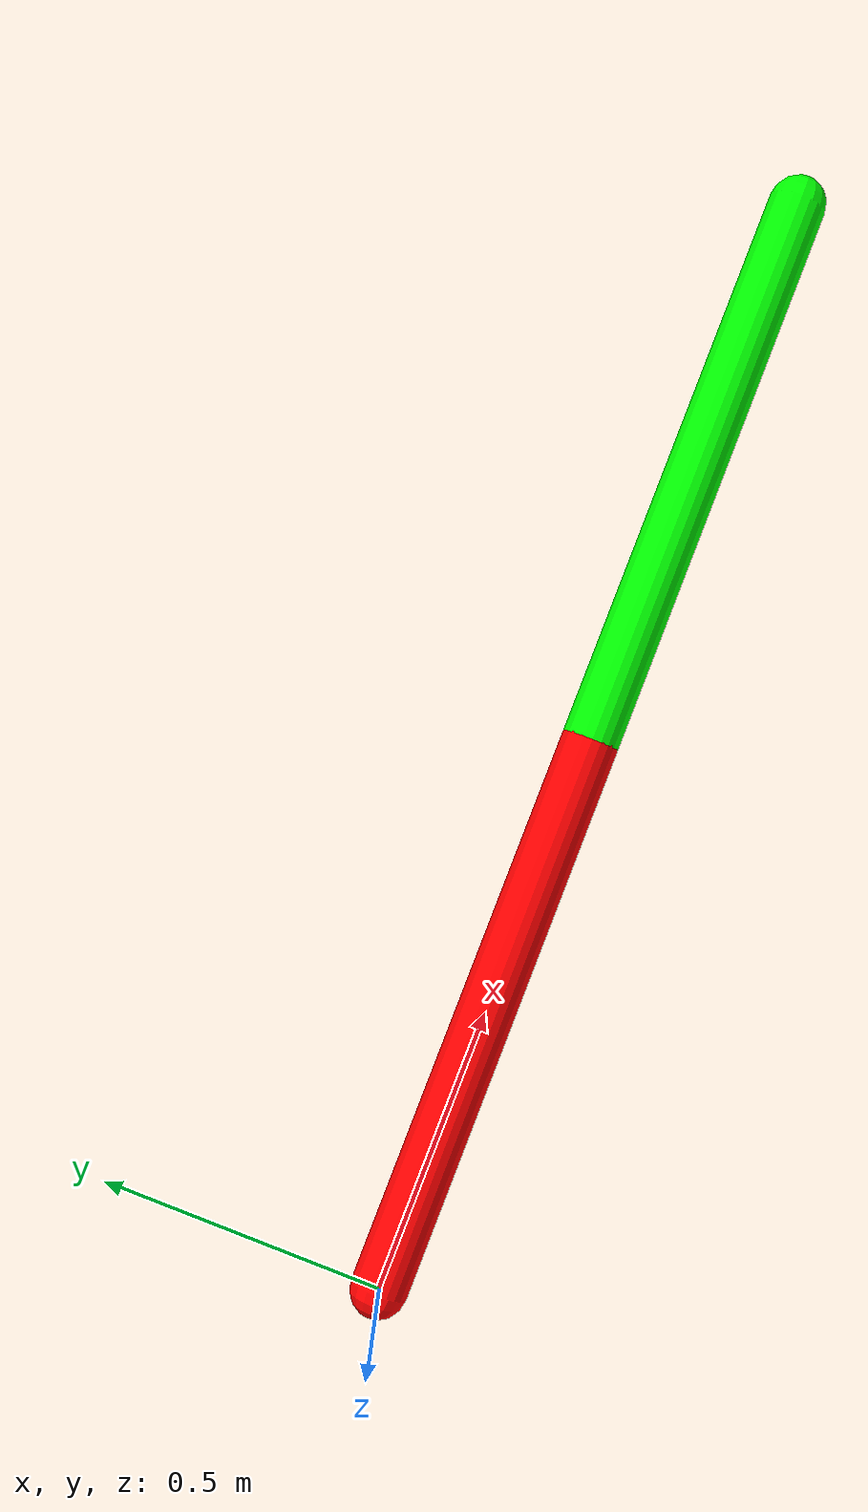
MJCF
<mujoco>
    <option gravity="0 0 -9.81" integrator="RK4"/>
    <worldbody>
        <body name="robotic_arm">
            <joint name="joint1" type="ball" damping="1.0"/>
            <geom name="link1" type="capsule" fromto="0 0 0 1 0 0" size="0.05" mass="1" rgba="1 0 0 1"/>
            <!-- A child body will move relative to its parent body.
            When we set the position of link2_body to the endpoint of link1,
            it means that link2 is attached to link1 -->
            <body name="link2_body" pos="1 0 0">
                <joint name="joint2" type="ball" damping="1.0"/>
                <geom name="link2" type="capsule" fromto="0 0 0 1 0 0" size="0.05" mass="1" rgba="0 1 0 1"/>
            </body>
        </body>
    </worldbody>
    <actuator>
        <!-- Ball joint 1: 3 motors for x, y, z rotational axes -->
        <motor joint="joint1" name="motor1_x" gear="1 0 0" ctrlrange="-5 5"/>
        <motor joint="joint1" name="motor1_y" gear="0 1 0" ctrlrange="-5 5"/>
        <motor joint="joint1" name="motor1_z" gear="0 0 1" ctrlrange="-5 5"/>

        <!-- Ball joint 2: 3 motors for x, y, z rotational axes -->
        <motor joint="joint2" name="motor2_x" gear="1 0 0" ctrlrange="-5 5"/>
        <motor joint="joint2" name="motor2_y" gear="0 1 0" ctrlrange="-5 5"/>
        <motor joint="joint2" name="motor2_z" gear="0 0 1" ctrlrange="-5 5"/>
    </actuator>
</mujoco>
